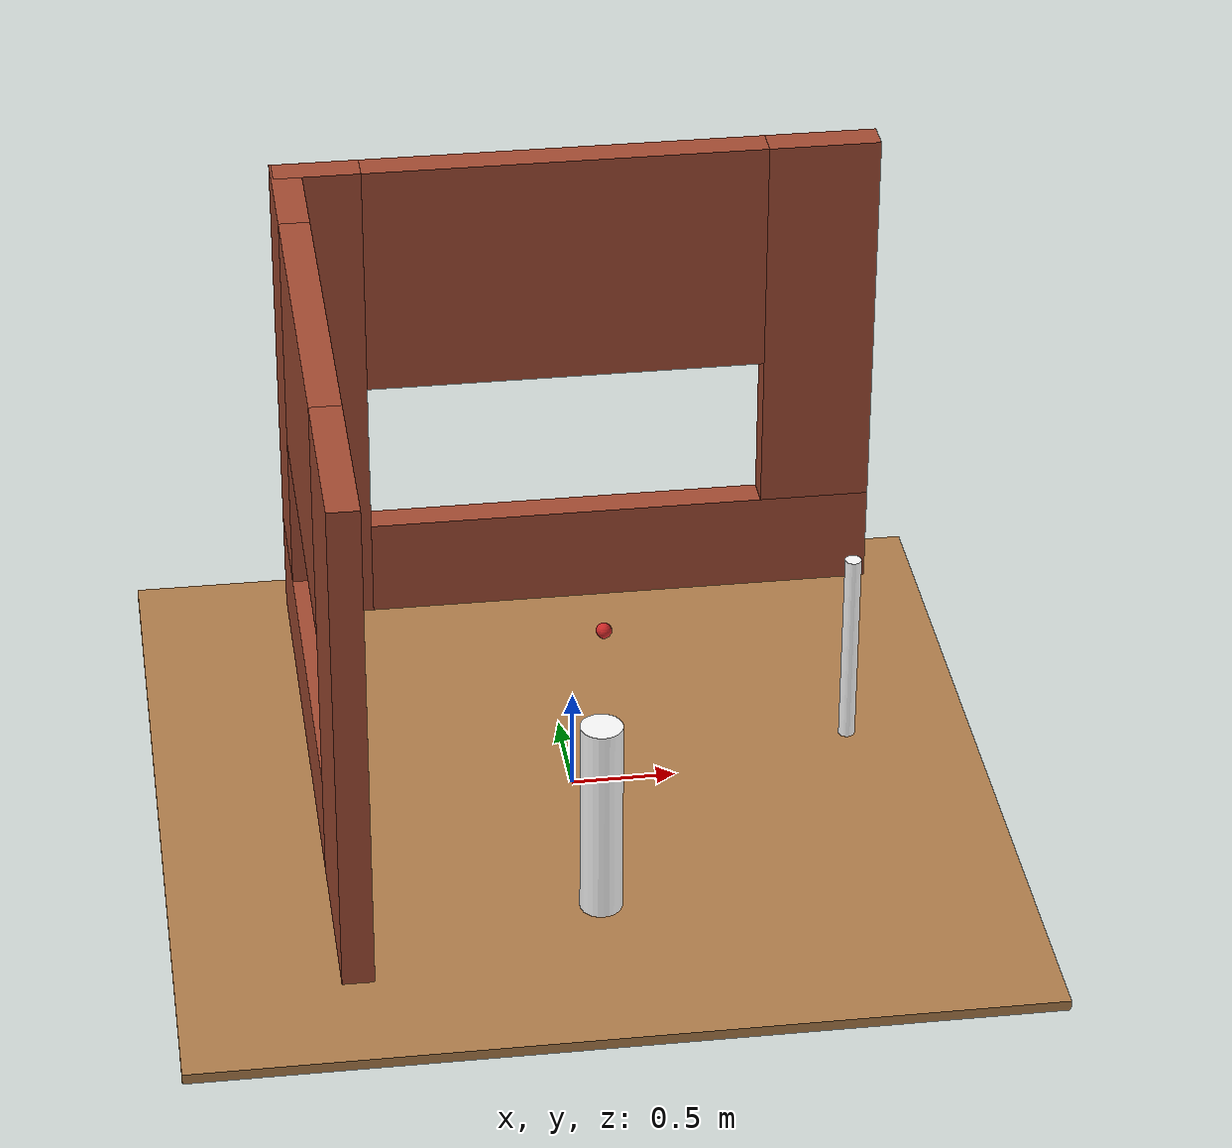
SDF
<sdf version="1.6">
 <world name="default">
  <gravity>0 0 -9.8</gravity>
  <magnetic_field>6e-06 2.3e-05 -4.2e-05</magnetic_field>
  <atmosphere type="adiabatic"/>
  <physics type="ode">
   <gravity>0.000000 0.000000 -9.810000</gravity>
   <max_contacts>5</max_contacts>
   <ode>
    <solver><type>quick</type><iters>50</iters><precon_iters>0</precon_iters><sor>1.300000</sor></solver>
    <constraints>
     <cfm>0.000000</cfm>
     <erp>0.200000</erp>
     <contact_max_correcting_vel>100.000000</contact_max_correcting_vel>
     <contact_surface_layer>0.001000</contact_surface_layer>
    </constraints>
   </ode>
  </physics>
  <scene><ambient>0.4 0.4 0.4 1</ambient><background>0.7 0.7 1 1</background><shadows>1</shadows></scene>
  <spherical_coordinates>
   <surface_model>EARTH_WGS84</surface_model>
   <latitude_deg>0</latitude_deg>
   <longitude_deg>0</longitude_deg>
   <elevation>0</elevation>
   <heading_deg>0</heading_deg>
  </spherical_coordinates>
  <model name="cricket_ball">
   <link name="link">
    <pose>0 0 0.0375 0 -0 0</pose>
    <inertial>
     <mass>0.1467</mass>
     <inertia>
      <ixx>8.25187e-05</ixx>
      <ixy>0</ixy>
      <ixz>0</ixz>
      <iyy>8.25187e-05</iyy>
      <iyz>0</iyz>
      <izz>8.25187e-05</izz>
     </inertia>
    </inertial>
    <collision name="collision">
     <geometry><sphere><radius>0.0375</radius></sphere></geometry>
     <surface>
      <contact>
       <poissons_ratio>0.347</poissons_ratio>
       <elastic_modulus>8.8e+09</elastic_modulus>
       <ode><kp>100000</kp><kd>100</kd><max_vel>100</max_vel><min_depth>0.001</min_depth></ode>
      </contact>
      <friction>
       <torsional>
        <coefficient>1</coefficient>
        <use_patch_radius>0</use_patch_radius>
        <surface_radius>0.01</surface_radius>
       </torsional>
      </friction>
     </surface>
    </collision>
    <visual name="visual">
     <geometry><sphere><radius>0.0375</radius></sphere></geometry>
     <material>
      <script><uri>file://media/materials/scripts/gazebo.material</uri><name>Gazebo/Red</name></script>
     </material>
    </visual>
    <velocity_decay><linear>0</linear><angular>0.005</angular></velocity_decay>
   </link>
   <pose>0.15003 -5.5e-05 0.82 0.003644 -0.00082 0.000309</pose>
  </model>
  <light name="user_spot_light_0" type="spot">
   <pose>-0.614545 -0.753038 2.0714 0.392405 -0 0</pose>
   <diffuse>0.7 0.5 0.2 1</diffuse>
   <specular>0.1 0.1 0.1 1</specular>
   <direction>0 0 -1</direction>
   <attenuation>
    <range>20</range>
    <constant>0.5</constant>
    <linear>0.01</linear>
    <quadratic>0.001</quadratic>
   </attenuation>
   <cast_shadows>0</cast_shadows>
   <spot><inner_angle>0.6</inner_angle><outer_angle>1</outer_angle><falloff>1</falloff></spot>
  </light>
  <light name="user_directional_light_0" type="directional">
   <pose>0 0 3 0 -0 0</pose>
   <diffuse>0.9 0.85 0.8 1</diffuse>
   <specular>0.1 0.1 0.1 1</specular>
   <direction>0.1 0.1 -0.9</direction>
   <attenuation>
    <range>20</range>
    <constant>0.5</constant>
    <linear>0.01</linear>
    <quadratic>0.001</quadratic>
   </attenuation>
  </light>
  <include>
   <uri>model://smart_grasping_sandbox/models/building</uri>
   <static>true</static>
   <pose>0.25 0.18 0 0 -0 0</pose>
  </include>
  <include>
   <uri>model://smart_grasping_sandbox/models/floor</uri>
   <static>true</static>
   <pose>0.0 0.0 -0.025 0 0 0</pose>
  </include>
  <include>
   <uri>model://smart_grasping_sandbox/models/kinect_pilar</uri>
   <static>true</static>
   <pose>1.39 0.242 0.5 0 -0 0</pose>
  </include>
  <include>
   <uri>model://smart_grasping_sandbox/models/robot_pilar</uri>
   <static>true</static>
   <pose>0.0 -1.0 0.5 0 -0 0</pose>
  </include>
 </world>
</sdf>

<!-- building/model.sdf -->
<sdf version='1.6'>
  <model name='building'>
      <pose frame=''>0.25 0.18 0 0 -0 0</pose>
      <link name='Wall_1'>
        <pose frame=''>-1.42 -0 0 0 -0 1.5708</pose>
        <visual name='Wall_1_Visual_0'>
          <pose frame=''>-1.1775 0 1.25 0 -0 0</pose>
          <geometry>
            <box>
              <size>0.895 0.15 2.5</size>
            </box>
          </geometry>
          <material>
            <script>
              <uri>file://media/materials/scripts/gazebo.material</uri>
              <name>Gazebo/Bricks</name>
            </script>
            <ambient>1 1 1 1</ambient>
          </material>
          <meta>
            <layer>0</layer>
          </meta>
        </visual>
        <collision name='Wall_1_Collision_0'>
          <geometry>
            <box>
              <size>0.895 0.15 2.5</size>
            </box>
          </geometry>
          <pose frame=''>-1.1775 0 1.25 0 -0 0</pose>
          <max_contacts>10</max_contacts>
          <surface>
            <contact>
              <ode/>
            </contact>
            <bounce/>
            <friction>
              <torsional>
                <ode/>
              </torsional>
              <ode/>
            </friction>
          </surface>
        </collision>
        <visual name='Wall_1_Visual_1'>
          <pose frame=''>0.4475 0 0.25 0 -0 0</pose>
          <geometry>
            <box>
              <size>2.355 0.15 0.5</size>
            </box>
          </geometry>
          <material>
            <script>
              <uri>file://media/materials/scripts/gazebo.material</uri>
              <name>Gazebo/Bricks</name>
            </script>
            <ambient>1 1 1 1</ambient>
          </material>
          <meta>
            <layer>0</layer>
          </meta>
        </visual>
        <collision name='Wall_1_Collision_1'>
          <geometry>
            <box>
              <size>2.355 0.15 0.5</size>
            </box>
          </geometry>
          <pose frame=''>0.4475 0 0.25 0 -0 0</pose>
          <max_contacts>10</max_contacts>
          <surface>
            <contact>
              <ode/>
            </contact>
            <bounce/>
            <friction>
              <torsional>
                <ode/>
              </torsional>
              <ode/>
            </friction>
          </surface>
        </collision>
        <visual name='Wall_1_Visual_2'>
          <pose frame=''>1.3175 0 1.5 0 -0 0</pose>
          <geometry>
            <box>
              <size>0.615 0.15 2</size>
            </box>
          </geometry>
          <material>
            <script>
              <uri>file://media/materials/scripts/gazebo.material</uri>
              <name>Gazebo/Bricks</name>
            </script>
            <ambient>1 1 1 1</ambient>
          </material>
          <meta>
            <layer>0</layer>
          </meta>
        </visual>
        <collision name='Wall_1_Collision_2'>
          <geometry>
            <box>
              <size>0.615 0.15 2</size>
            </box>
          </geometry>
          <pose frame=''>1.3175 0 1.5 0 -0 0</pose>
          <max_contacts>10</max_contacts>
          <surface>
            <contact>
              <ode/>
            </contact>
            <bounce/>
            <friction>
              <torsional>
                <ode/>
              </torsional>
              <ode/>
            </friction>
          </surface>
        </collision>
        <visual name='Wall_1_Visual_3'>
          <pose frame=''>0.14 0 1.9 0 -0 0</pose>
          <geometry>
            <box>
              <size>1.74 0.15 1.2</size>
            </box>
          </geometry>
          <material>
            <script>
              <uri>file://media/materials/scripts/gazebo.material</uri>
              <name>Gazebo/Bricks</name>
            </script>
            <ambient>1 1 1 1</ambient>
          </material>
          <meta>
            <layer>0</layer>
          </meta>
        </visual>
        <collision name='Wall_1_Collision_3'>
          <geometry>
            <box>
              <size>1.74 0.15 1.2</size>
            </box>
          </geometry>
          <pose frame=''>0.14 0 1.9 0 -0 0</pose>
          <max_contacts>10</max_contacts>
          <surface>
            <contact>
              <ode/>
            </contact>
            <bounce/>
            <friction>
              <torsional>
                <ode/>
              </torsional>
              <ode/>
            </friction>
          </surface>
        </collision>
        <self_collide>0</self_collide>
        <kinematic>0</kinematic>
      </link>
      <link name='Wall_3'>
        <pose frame=''>0.005 1.55 0 0 -0 0</pose>
        <visual name='Wall_3_Visual_0'>
          <pose frame=''>-1.27727 0 1.25 0 -0 0</pose>
          <geometry>
            <box>
              <size>0.425456 0.15 2.5</size>
            </box>
          </geometry>
          <material>
            <script>
              <uri>file://media/materials/scripts/gazebo.material</uri>
              <name>Gazebo/Bricks</name>
            </script>
            <ambient>1 1 1 1</ambient>
          </material>
          <meta>
            <layer>0</layer>
          </meta>
        </visual>
        <collision name='Wall_3_Collision_0'>
          <geometry>
            <box>
              <size>0.425456 0.15 2.5</size>
            </box>
          </geometry>
          <pose frame=''>-1.27727 0 1.25 0 -0 0</pose>
          <max_contacts>10</max_contacts>
          <surface>
            <contact>
              <ode/>
            </contact>
            <bounce/>
            <friction>
              <torsional>
                <ode/>
              </torsional>
              <ode/>
            </friction>
          </surface>
        </collision>
        <visual name='Wall_3_Visual_1'>
          <pose frame=''>0.212728 0 0.25 0 -0 0</pose>
          <geometry>
            <box>
              <size>2.55454 0.15 0.5</size>
            </box>
          </geometry>
          <material>
            <script>
              <uri>file://media/materials/scripts/gazebo.material</uri>
              <name>Gazebo/Bricks</name>
            </script>
            <ambient>1 1 1 1</ambient>
          </material>
          <meta>
            <layer>0</layer>
          </meta>
        </visual>
        <collision name='Wall_3_Collision_1'>
          <geometry>
            <box>
              <size>2.55454 0.15 0.5</size>
            </box>
          </geometry>
          <pose frame=''>0.212728 0 0.25 0 -0 0</pose>
          <max_contacts>10</max_contacts>
          <surface>
            <contact>
              <ode/>
            </contact>
            <bounce/>
            <friction>
              <torsional>
                <ode/>
              </torsional>
              <ode/>
            </friction>
          </surface>
        </collision>
        <visual name='Wall_3_Visual_2'>
          <pose frame=''>1.21273 0 1.5 0 -0 0</pose>
          <geometry>
            <box>
              <size>0.554544 0.15 2</size>
            </box>
          </geometry>
          <material>
            <script>
              <uri>file://media/materials/scripts/gazebo.material</uri>
              <name>Gazebo/Bricks</name>
            </script>
            <ambient>1 1 1 1</ambient>
          </material>
          <meta>
            <layer>0</layer>
          </meta>
        </visual>
        <collision name='Wall_3_Collision_2'>
          <geometry>
            <box>
              <size>0.554544 0.15 2</size>
            </box>
          </geometry>
          <pose frame=''>1.21273 0 1.5 0 -0 0</pose>
          <max_contacts>10</max_contacts>
          <surface>
            <contact>
              <ode/>
            </contact>
            <bounce/>
            <friction>
              <torsional>
                <ode/>
              </torsional>
              <ode/>
            </friction>
          </surface>
        </collision>
        <visual name='Wall_3_Visual_3'>
          <pose frame=''>-0.064544 0 1.9 0 -0 0</pose>
          <geometry>
            <box>
              <size>2 0.15 1.2</size>
            </box>
          </geometry>
          <material>
            <script>
              <uri>file://media/materials/scripts/gazebo.material</uri>
              <name>Gazebo/Bricks</name>
            </script>
            <ambient>1 1 1 1</ambient>
          </material>
          <meta>
            <layer>0</layer>
          </meta>
        </visual>
        <collision name='Wall_3_Collision_3'>
          <geometry>
            <box>
              <size>2 0.15 1.2</size>
            </box>
          </geometry>
          <pose frame=''>-0.064544 0 1.9 0 -0 0</pose>
          <max_contacts>10</max_contacts>
          <surface>
            <contact>
              <ode/>
            </contact>
            <bounce/>
            <friction>
              <torsional>
                <ode/>
              </torsional>
              <ode/>
            </friction>
          </surface>
        </collision>
        <self_collide>0</self_collide>
        <kinematic>0</kinematic>
      </link>
      <static>1</static>
    </model>
</sdf>

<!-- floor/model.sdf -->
<sdf version='1.6'>
  <model name='floor'>
      <static>1</static>
      <pose frame=''>0.0 0.0 -0.025 0 0 0</pose>
      <link name='link'>
        <inertial>
          <mass>1</mass>
          <inertia>
            <ixx>0.166667</ixx>
            <ixy>0</ixy>
            <ixz>0</ixz>
            <iyy>0.166667</iyy>
            <iyz>0</iyz>
            <izz>0.166667</izz>
          </inertia>
        </inertial>
        <collision name='collision'>
          <geometry>
            <box>
              <size>4.0 4.0 0.05</size>
            </box>
          </geometry>
          <max_contacts>10</max_contacts>
          <surface>
            <contact>
              <ode/>
            </contact>
            <bounce/>
            <friction>
              <torsional>
                <ode/>
              </torsional>
              <ode/>
            </friction>
          </surface>
        </collision>
        <visual name='visual'>
          <geometry>
            <box>
              <size>4.0 4.0 0.05</size>
            </box>
          </geometry>
          <material>
            <script>
              <uri>file://media/materials/scripts/gazebo.material</uri>
              <name>Gazebo/Wood</name>
            </script>
            <ambient>1 1 1 1</ambient>
          </material>
        </visual>
        <self_collide>0</self_collide>
        <kinematic>0</kinematic>
      </link>
    </model>
</sdf>

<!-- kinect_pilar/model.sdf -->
<sdf version='1.6'>
  <model name='kinect_pilar'>
      <static>1</static>
      <pose frame=''>1.39 0.242 0.5 0 -0 0</pose>
      <link name='link'>
        <inertial>
          <mass>1</mass>
          <inertia>
            <ixx>0.145833</ixx>
            <ixy>0</ixy>
            <ixz>0</ixz>
            <iyy>0.145833</iyy>
            <iyz>0</iyz>
            <izz>0.125</izz>
          </inertia>
        </inertial>
        <collision name='collision'>
          <geometry>
            <cylinder>
              <radius>0.04</radius>
              <length>1</length>
            </cylinder>
          </geometry>
          <max_contacts>10</max_contacts>
          <surface>
            <contact>
              <ode/>
            </contact>
            <bounce/>
            <friction>
              <torsional>
                <ode/>
              </torsional>
              <ode/>
            </friction>
          </surface>
        </collision>
        <visual name='visual'>
          <geometry>
            <cylinder>
              <radius>0.04</radius>
              <length>1</length>
            </cylinder>
          </geometry>
          <material>
            <script>
              <uri>file://media/materials/scripts/gazebo.material</uri>
              <name>Gazebo/Metal</name>
            </script>
            <ambient>1 1 1 1</ambient>
          </material>
        </visual>
        <self_collide>0</self_collide>
        <kinematic>0</kinematic>
      </link>
    </model>
</sdf>

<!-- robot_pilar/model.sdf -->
<sdf version='1.6'>
 <model name='robot_pilar'>
      <static>1</static>
      <pose frame=''>0.0 -1.0 0.5 0 -0 0</pose>
      <link name='link'>
        <inertial>
          <mass>1</mass>
          <inertia>
            <ixx>0.145833</ixx>
            <ixy>0</ixy>
            <ixz>0</ixz>
            <iyy>0.145833</iyy>
            <iyz>0</iyz>
            <izz>0.125</izz>
          </inertia>
        </inertial>
        <collision name='collision'>
          <geometry>
            <cylinder>
              <radius>0.1</radius>
              <length>1</length>
            </cylinder>
          </geometry>
          <max_contacts>10</max_contacts>
          <surface>
            <contact>
              <ode/>
            </contact>
            <bounce/>
            <friction>
              <torsional>
                <ode/>
              </torsional>
              <ode/>
            </friction>
          </surface>
        </collision>
        <visual name='visual'>
          <geometry>
            <cylinder>
              <radius>0.1</radius>
              <length>1</length>
            </cylinder>
          </geometry>
          <material>
            <script>
              <uri>file://media/materials/scripts/gazebo.material</uri>
              <name>Gazebo/Metal</name>
            </script>
            <ambient>1 1 1 1</ambient>
          </material>
        </visual>
        <self_collide>0</self_collide>
        <kinematic>0</kinematic>
      </link>
    </model>
</sdf>
